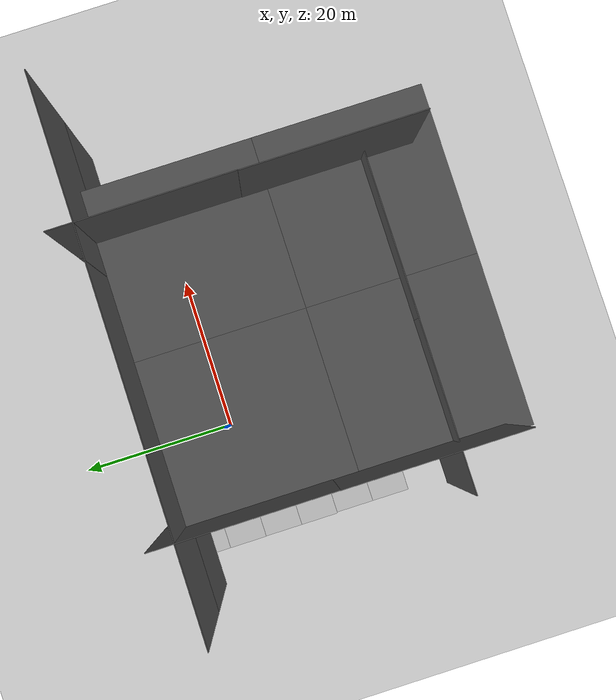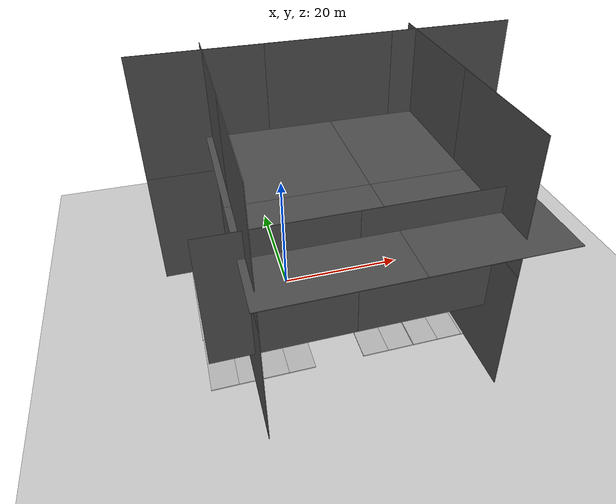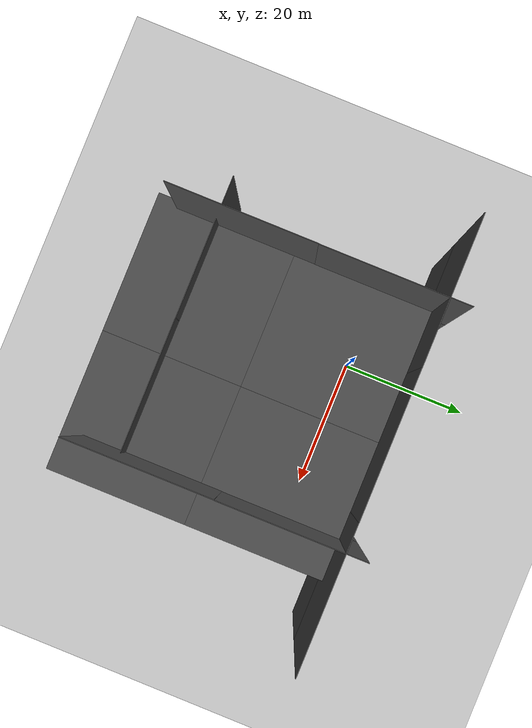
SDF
<sdf version="1.4">
 <world name="default">
  <light name="sun" type="directional">
   <pose>0 0 10 0 -0 0</pose>
   <diffuse>0.8 0.8 0.8 1</diffuse>
   <specular>0.2 0.2 0.2 1</specular>
   <attenuation>
    <range>1000</range>
    <constant>0.9</constant>
    <linear>0.01</linear>
    <quadratic>0.001</quadratic>
   </attenuation>
   <direction>-0.5 0.1 -0.9</direction>
  </light>
  <plugin name="ros_interface_plugin" filename="librotors_gazebo_ros_interface_plugin.so"/>
  <physics type="ode">
   <ode>
    <solver><type>quick</type><iters>1000</iters><sor>1.3</sor></solver>
    <constraints>
     <cfm>0</cfm>
     <erp>0.2</erp>
     <contact_max_correcting_vel>100</contact_max_correcting_vel>
     <contact_surface_layer>0.001</contact_surface_layer>
    </constraints>
   </ode>
   <max_step_size>0.01</max_step_size>
   <real_time_factor>1</real_time_factor>
   <real_time_update_rate>100</real_time_update_rate>
   <gravity>0 0 -9.8</gravity>
  </physics>
  <plugin name="gazebo_octomap" filename="librotors_gazebo_octomap_plugin.so">
   <octomapPubTopic>world/octomap</octomapPubTopic>
   <octomapServiceName>world/get_octomap</octomapServiceName>
  </plugin>
  <scene><ambient>0.4 0.4 0.4 1</ambient><background>0.7 0.7 0.7 1</background><shadows>1</shadows></scene>
  <spherical_coordinates>
   <surface_model>EARTH_WGS84</surface_model>
   <latitude_deg>47.3667</latitude_deg>
   <longitude_deg>8.5500</longitude_deg>
   <elevation>500.0</elevation>
   <heading_deg>0</heading_deg>
  </spherical_coordinates>
  <model name="ground_plane">
   <static>1</static>
   <link name="link">
    <collision name="collision">
     <geometry><plane><normal>0 0 1</normal><size>100 100</size></plane></geometry>
     <surface><friction><ode><mu>100</mu><mu2>50</mu2></ode></friction></surface>
    </collision>
    <visual name="visual">
     <cast_shadows>0</cast_shadows>
     <geometry><plane><normal>0 0 1</normal><size>100 100</size></plane></geometry>
     <material>
      <script><uri>file://media/materials/scripts/gazebo.material</uri><name>Gazebo/Grey</name></script>
     </material>
    </visual>
    <velocity_decay><linear>0</linear><angular>0</angular></velocity_decay>
   </link>
   <pose>17 -17 0 0 -0 0</pose>
  </model>
  <model name="asphalt_plane">
   <static>1</static>
   <link name="link">
    <collision name="collision"><geometry><box><size>20 20 0.1</size></box></geometry></collision>
    <visual name="visual">
     <cast_shadows>0</cast_shadows>
     <geometry><box><size>20 20 0.1</size></box></geometry>
     <material>
      <script>
       <uri>model://asphalt_plane/materials/scripts</uri>
       <uri>model://asphalt_plane/materials/textures</uri>
       <name>vrc/asphalt</name>
      </script>
     </material>
    </visual>
    <velocity_decay><linear>0</linear><angular>0</angular></velocity_decay>
   </link>
   <pose>-9 0 10 0 -1.57 -3.14</pose>
  </model>
  <model name="asphalt_plane_0">
   <static>1</static>
   <link name="link">
    <collision name="collision"><geometry><box><size>20 20 0.1</size></box></geometry></collision>
    <visual name="visual">
     <cast_shadows>0</cast_shadows>
     <geometry><box><size>20 20 0.1</size></box></geometry>
     <material>
      <script>
       <uri>model://asphalt_plane/materials/scripts</uri>
       <uri>model://asphalt_plane/materials/textures</uri>
       <name>vrc/asphalt</name>
      </script>
     </material>
    </visual>
    <velocity_decay><linear>0</linear><angular>0</angular></velocity_decay>
   </link>
   <pose>-9 -20 10 0 -1.57 -3.14</pose>
  </model>
  <model name="asphalt_plane_1">
   <static>1</static>
   <link name="link">
    <collision name="collision"><geometry><box><size>20 20 0.1</size></box></geometry></collision>
    <visual name="visual">
     <cast_shadows>0</cast_shadows>
     <geometry><box><size>20 20 0.1</size></box></geometry>
     <material>
      <script>
       <uri>model://asphalt_plane/materials/scripts</uri>
       <uri>model://asphalt_plane/materials/textures</uri>
       <name>vrc/asphalt</name>
      </script>
     </material>
    </visual>
    <velocity_decay><linear>0</linear><angular>0</angular></velocity_decay>
   </link>
   <pose>-10 7 10 -1.57 -1.57 0</pose>
  </model>
  <model name="asphalt_plane_2">
   <static>1</static>
   <link name="link">
    <collision name="collision"><geometry><box><size>20 20 0.1</size></box></geometry></collision>
    <visual name="visual">
     <cast_shadows>0</cast_shadows>
     <geometry><box><size>20 20 0.1</size></box></geometry>
     <material>
      <script>
       <uri>model://asphalt_plane/materials/scripts</uri>
       <uri>model://asphalt_plane/materials/textures</uri>
       <name>vrc/asphalt</name>
      </script>
     </material>
    </visual>
    <velocity_decay><linear>0</linear><angular>0</angular></velocity_decay>
   </link>
   <pose>10 7 10 -1.57 -1.57 0</pose>
  </model>
  <model name="asphalt_plane_3">
   <static>1</static>
   <link name="link">
    <collision name="collision"><geometry><box><size>20 20 0.1</size></box></geometry></collision>
    <visual name="visual">
     <cast_shadows>0</cast_shadows>
     <geometry><box><size>20 20 0.1</size></box></geometry>
     <material>
      <script>
       <uri>model://asphalt_plane/materials/scripts</uri>
       <uri>model://asphalt_plane/materials/textures</uri>
       <name>vrc/asphalt</name>
      </script>
     </material>
    </visual>
    <velocity_decay><linear>0</linear><angular>0</angular></velocity_decay>
   </link>
   <pose>30 7 10 -1.57 -1.57 0</pose>
  </model>
  <model name="asphalt_plane_4">
   <static>1</static>
   <link name="link">
    <collision name="collision"><geometry><box><size>20 20 0.1</size></box></geometry></collision>
    <visual name="visual">
     <cast_shadows>0</cast_shadows>
     <geometry><box><size>20 20 0.1</size></box></geometry>
     <material>
      <script>
       <uri>model://asphalt_plane/materials/scripts</uri>
       <uri>model://asphalt_plane/materials/textures</uri>
       <name>vrc/asphalt</name>
      </script>
     </material>
    </visual>
    <velocity_decay><linear>0</linear><angular>0</angular></velocity_decay>
   </link>
   <pose>24 0 10  0 -1.57 -3.14</pose>
  </model>
  <model name="asphalt_plane_5">
   <static>1</static>
   <link name="link">
    <collision name="collision"><geometry><box><size>20 20 0.1</size></box></geometry></collision>
    <visual name="visual">
     <cast_shadows>0</cast_shadows>
     <geometry><box><size>20 20 0.1</size></box></geometry>
     <material>
      <script>
       <uri>model://asphalt_plane/materials/scripts</uri>
       <uri>model://asphalt_plane/materials/textures</uri>
       <name>vrc/asphalt</name>
      </script>
     </material>
    </visual>
    <velocity_decay><linear>0</linear><angular>0</angular></velocity_decay>
   </link>
   <pose>24 -20 10  0 -1.57 -3.14</pose>
  </model>
  <model name="asphalt_plane_6">
   <static>1</static>
   <link name="link">
    <collision name="collision"><geometry><box><size>20 20 0.1</size></box></geometry></collision>
    <visual name="visual">
     <cast_shadows>0</cast_shadows>
     <geometry><box><size>20 20 0.1</size></box></geometry>
     <material>
      <script>
       <uri>model://asphalt_plane/materials/scripts</uri>
       <uri>model://asphalt_plane/materials/textures</uri>
       <name>vrc/asphalt</name>
      </script>
     </material>
    </visual>
    <velocity_decay><linear>0</linear><angular>0</angular></velocity_decay>
   </link>
   <pose>-9 0 30 0 -1.57 -3.14</pose>
  </model>
  <model name="asphalt_plane_7">
   <static>1</static>
   <link name="link">
    <collision name="collision"><geometry><box><size>20 20 0.1</size></box></geometry></collision>
    <visual name="visual">
     <cast_shadows>0</cast_shadows>
     <geometry><box><size>20 20 0.1</size></box></geometry>
     <material>
      <script>
       <uri>model://asphalt_plane/materials/scripts</uri>
       <uri>model://asphalt_plane/materials/textures</uri>
       <name>vrc/asphalt</name>
      </script>
     </material>
    </visual>
    <velocity_decay><linear>0</linear><angular>0</angular></velocity_decay>
   </link>
   <pose>-9 -20 30 0 -1.57 -3.14</pose>
  </model>
  <model name="asphalt_plane_8">
   <static>1</static>
   <link name="link">
    <collision name="collision"><geometry><box><size>20 20 0.1</size></box></geometry></collision>
    <visual name="visual">
     <cast_shadows>0</cast_shadows>
     <geometry><box><size>20 20 0.1</size></box></geometry>
     <material>
      <script>
       <uri>model://asphalt_plane/materials/scripts</uri>
       <uri>model://asphalt_plane/materials/textures</uri>
       <name>vrc/asphalt</name>
      </script>
     </material>
    </visual>
    <velocity_decay><linear>0</linear><angular>0</angular></velocity_decay>
   </link>
   <pose>-10 7 30 -1.57 -1.57 0</pose>
  </model>
  <model name="asphalt_plane_9">
   <static>1</static>
   <link name="link">
    <collision name="collision"><geometry><box><size>20 20 0.1</size></box></geometry></collision>
    <visual name="visual">
     <cast_shadows>0</cast_shadows>
     <geometry><box><size>20 20 0.1</size></box></geometry>
     <material>
      <script>
       <uri>model://asphalt_plane/materials/scripts</uri>
       <uri>model://asphalt_plane/materials/textures</uri>
       <name>vrc/asphalt</name>
      </script>
     </material>
    </visual>
    <velocity_decay><linear>0</linear><angular>0</angular></velocity_decay>
   </link>
   <pose>10 7 30 -1.57 -1.57 0</pose>
  </model>
  <model name="asphalt_plane_10">
   <static>1</static>
   <link name="link">
    <collision name="collision"><geometry><box><size>20 20 0.1</size></box></geometry></collision>
    <visual name="visual">
     <cast_shadows>0</cast_shadows>
     <geometry><box><size>20 20 0.1</size></box></geometry>
     <material>
      <script>
       <uri>model://asphalt_plane/materials/scripts</uri>
       <uri>model://asphalt_plane/materials/textures</uri>
       <name>vrc/asphalt</name>
      </script>
     </material>
    </visual>
    <velocity_decay><linear>0</linear><angular>0</angular></velocity_decay>
   </link>
   <pose>30 7 30 -1.57 -1.57 0</pose>
  </model>
  <model name="asphalt_plane_11">
   <static>1</static>
   <link name="link">
    <collision name="collision"><geometry><box><size>20 20 0.1</size></box></geometry></collision>
    <visual name="visual">
     <cast_shadows>0</cast_shadows>
     <geometry><box><size>20 20 0.1</size></box></geometry>
     <material>
      <script>
       <uri>model://asphalt_plane/materials/scripts</uri>
       <uri>model://asphalt_plane/materials/textures</uri>
       <name>vrc/asphalt</name>
      </script>
     </material>
    </visual>
    <velocity_decay><linear>0</linear><angular>0</angular></velocity_decay>
   </link>
   <pose>24 0 30  0 -1.57 -3.14</pose>
  </model>
  <model name="asphalt_plane_12">
   <static>1</static>
   <link name="link">
    <collision name="collision"><geometry><box><size>20 20 0.1</size></box></geometry></collision>
    <visual name="visual">
     <cast_shadows>0</cast_shadows>
     <geometry><box><size>20 20 0.1</size></box></geometry>
     <material>
      <script>
       <uri>model://asphalt_plane/materials/scripts</uri>
       <uri>model://asphalt_plane/materials/textures</uri>
       <name>vrc/asphalt</name>
      </script>
     </material>
    </visual>
    <velocity_decay><linear>0</linear><angular>0</angular></velocity_decay>
   </link>
   <pose>24 -20 30  0 -1.57 -3.14</pose>
  </model>
  <model name="asphalt_plane_13">
   <static>1</static>
   <link name="link">
    <collision name="collision"><geometry><box><size>20 20 0.1</size></box></geometry></collision>
    <visual name="visual">
     <cast_shadows>0</cast_shadows>
     <geometry><box><size>20 20 0.1</size></box></geometry>
     <material>
      <script>
       <uri>model://asphalt_plane/materials/scripts</uri>
       <uri>model://asphalt_plane/materials/textures</uri>
       <name>vrc/asphalt</name>
      </script>
     </material>
    </visual>
    <velocity_decay><linear>0</linear><angular>0</angular></velocity_decay>
   </link>
   <pose>15 -24 20  -1.57 -1.57 0</pose>
  </model>
  <model name="asphalt_plane_14">
   <static>1</static>
   <link name="link">
    <collision name="collision"><geometry><box><size>20 20 0.1</size></box></geometry></collision>
    <visual name="visual">
     <cast_shadows>0</cast_shadows>
     <geometry><box><size>20 20 0.1</size></box></geometry>
     <material>
      <script>
       <uri>model://asphalt_plane/materials/scripts</uri>
       <uri>model://asphalt_plane/materials/textures</uri>
       <name>vrc/asphalt</name>
      </script>
     </material>
    </visual>
    <velocity_decay><linear>0</linear><angular>0</angular></velocity_decay>
   </link>
   <pose>-5 -24 20 -1.57 -1.57 0</pose>
  </model>
  <model name="asphalt_plane_15">
   <static>1</static>
   <link name="link">
    <collision name="collision"><geometry><box><size>20 20 0.1</size></box></geometry></collision>
    <visual name="visual">
     <cast_shadows>0</cast_shadows>
     <geometry><box><size>20 20 0.1</size></box></geometry>
     <material>
      <script>
       <uri>model://asphalt_plane/materials/scripts</uri>
       <uri>model://asphalt_plane/materials/textures</uri>
       <name>vrc/asphalt</name>
      </script>
     </material>
    </visual>
    <velocity_decay><linear>0</linear><angular>0</angular></velocity_decay>
   </link>
   <pose>0 -3 26 0 0 0</pose>
  </model>
  <model name="asphalt_plane_16">
   <static>1</static>
   <link name="link">
    <collision name="collision"><geometry><box><size>20 20 0.1</size></box></geometry></collision>
    <visual name="visual">
     <cast_shadows>0</cast_shadows>
     <geometry><box><size>20 20 0.1</size></box></geometry>
     <material>
      <script>
       <uri>model://asphalt_plane/materials/scripts</uri>
       <uri>model://asphalt_plane/materials/textures</uri>
       <name>vrc/asphalt</name>
      </script>
     </material>
    </visual>
    <velocity_decay><linear>0</linear><angular>0</angular></velocity_decay>
   </link>
   <pose>20 -3 26 0 0 0</pose>
  </model>
  <model name="asphalt_plane_17">
   <static>1</static>
   <link name="link">
    <collision name="collision"><geometry><box><size>20 20 0.1</size></box></geometry></collision>
    <visual name="visual">
     <cast_shadows>0</cast_shadows>
     <geometry><box><size>20 20 0.1</size></box></geometry>
     <material>
      <script>
       <uri>model://asphalt_plane/materials/scripts</uri>
       <uri>model://asphalt_plane/materials/textures</uri>
       <name>vrc/asphalt</name>
      </script>
     </material>
    </visual>
    <velocity_decay><linear>0</linear><angular>0</angular></velocity_decay>
   </link>
   <pose>0 -23 26 0 0 0</pose>
  </model>
  <model name="asphalt_plane_18">
   <static>1</static>
   <link name="link">
    <collision name="collision"><geometry><box><size>20 20 0.1</size></box></geometry></collision>
    <visual name="visual">
     <cast_shadows>0</cast_shadows>
     <geometry><box><size>20 20 0.1</size></box></geometry>
     <material>
      <script>
       <uri>model://asphalt_plane/materials/scripts</uri>
       <uri>model://asphalt_plane/materials/textures</uri>
       <name>vrc/asphalt</name>
      </script>
     </material>
    </visual>
    <velocity_decay><linear>0</linear><angular>0</angular></velocity_decay>
   </link>
   <pose>20 -23 26 0 0 0</pose>
  </model>
  <model name="mud_box_0">
   <static>1</static>
   <link name="link">
    <collision name="collision"><geometry><box><size>8 10 0.2</size></box></geometry></collision>
    <visual name="visual_1">
     <pose>-2 2.5 0 0 -0 0</pose>
     <cast_shadows>0</cast_shadows>
     <geometry><box><size>4 5 0.2</size></box></geometry>
     <material>
      <script>
       <uri>model://mud_box/materials/scripts</uri>
       <uri>model://mud_box/materials/textures</uri>
       <name>vrc/mud</name>
      </script>
     </material>
    </visual>
    <visual name="visual_2">
     <pose>2 2.5 0 0 -0 0</pose>
     <cast_shadows>0</cast_shadows>
     <geometry><box><size>4 5 0.2</size></box></geometry>
     <material>
      <script>
       <uri>model://mud_box/materials/scripts</uri>
       <uri>model://mud_box/materials/textures</uri>
       <name>vrc/mud</name>
      </script>
     </material>
    </visual>
    <visual name="visual_3">
     <pose>2 -2.5 0 0 -0 0</pose>
     <cast_shadows>0</cast_shadows>
     <geometry><box><size>4 5 0.2</size></box></geometry>
     <material>
      <script>
       <uri>model://mud_box/materials/scripts</uri>
       <uri>model://mud_box/materials/textures</uri>
       <name>vrc/mud</name>
      </script>
     </material>
    </visual>
    <visual name="visual_4">
     <pose>-2 -2.5 0 0 -0 0</pose>
     <cast_shadows>0</cast_shadows>
     <geometry><box><size>4 5 0.2</size></box></geometry>
     <material>
      <script>
       <uri>model://mud_box/materials/scripts</uri>
       <uri>model://mud_box/materials/textures</uri>
       <name>vrc/mud</name>
      </script>
     </material>
    </visual>
    <velocity_decay><linear>0</linear><angular>0</angular></velocity_decay>
   </link>
   <pose>4 5 0 0 -0 0</pose>
  </model>
  <model name="mud_box_1">
   <static>1</static>
   <link name="link">
    <collision name="collision"><geometry><box><size>8 10 0.2</size></box></geometry></collision>
    <visual name="visual_1">
     <pose>-2 2.5 0 0 -0 0</pose>
     <cast_shadows>0</cast_shadows>
     <geometry><box><size>4 5 0.2</size></box></geometry>
     <material>
      <script>
       <uri>model://mud_box/materials/scripts</uri>
       <uri>model://mud_box/materials/textures</uri>
       <name>vrc/mud</name>
      </script>
     </material>
    </visual>
    <visual name="visual_2">
     <pose>2 2.5 0 0 -0 0</pose>
     <cast_shadows>0</cast_shadows>
     <geometry><box><size>4 5 0.2</size></box></geometry>
     <material>
      <script>
       <uri>model://mud_box/materials/scripts</uri>
       <uri>model://mud_box/materials/textures</uri>
       <name>vrc/mud</name>
      </script>
     </material>
    </visual>
    <visual name="visual_3">
     <pose>2 -2.5 0 0 -0 0</pose>
     <cast_shadows>0</cast_shadows>
     <geometry><box><size>4 5 0.2</size></box></geometry>
     <material>
      <script>
       <uri>model://mud_box/materials/scripts</uri>
       <uri>model://mud_box/materials/textures</uri>
       <name>vrc/mud</name>
      </script>
     </material>
    </visual>
    <visual name="visual_4">
     <pose>-2 -2.5 0 0 -0 0</pose>
     <cast_shadows>0</cast_shadows>
     <geometry><box><size>4 5 0.2</size></box></geometry>
     <material>
      <script>
       <uri>model://mud_box/materials/scripts</uri>
       <uri>model://mud_box/materials/textures</uri>
       <name>vrc/mud</name>
      </script>
     </material>
    </visual>
    <velocity_decay><linear>0</linear><angular>0</angular></velocity_decay>
   </link>
   <pose>-4 -5 0 0 -0 0</pose>
  </model>
  <model name="mud_box_2">
   <static>1</static>
   <link name="link">
    <collision name="collision"><geometry><box><size>8 10 0.2</size></box></geometry></collision>
    <visual name="visual_1">
     <pose>-2 2.5 0 0 -0 0</pose>
     <cast_shadows>0</cast_shadows>
     <geometry><box><size>4 5 0.2</size></box></geometry>
     <material>
      <script>
       <uri>model://mud_box/materials/scripts</uri>
       <uri>model://mud_box/materials/textures</uri>
       <name>vrc/mud</name>
      </script>
     </material>
    </visual>
    <visual name="visual_2">
     <pose>2 2.5 0 0 -0 0</pose>
     <cast_shadows>0</cast_shadows>
     <geometry><box><size>4 5 0.2</size></box></geometry>
     <material>
      <script>
       <uri>model://mud_box/materials/scripts</uri>
       <uri>model://mud_box/materials/textures</uri>
       <name>vrc/mud</name>
      </script>
     </material>
    </visual>
    <visual name="visual_3">
     <pose>2 -2.5 0 0 -0 0</pose>
     <cast_shadows>0</cast_shadows>
     <geometry><box><size>4 5 0.2</size></box></geometry>
     <material>
      <script>
       <uri>model://mud_box/materials/scripts</uri>
       <uri>model://mud_box/materials/textures</uri>
       <name>vrc/mud</name>
      </script>
     </material>
    </visual>
    <visual name="visual_4">
     <pose>-2 -2.5 0 0 -0 0</pose>
     <cast_shadows>0</cast_shadows>
     <geometry><box><size>4 5 0.2</size></box></geometry>
     <material>
      <script>
       <uri>model://mud_box/materials/scripts</uri>
       <uri>model://mud_box/materials/textures</uri>
       <name>vrc/mud</name>
      </script>
     </material>
    </visual>
    <velocity_decay><linear>0</linear><angular>0</angular></velocity_decay>
   </link>
   <pose>4 -5 0 0 -0 0</pose>
  </model>
  <model name="mud_box_3">
   <static>1</static>
   <link name="link">
    <collision name="collision"><geometry><box><size>8 10 0.2</size></box></geometry></collision>
    <visual name="visual_1">
     <pose>-2 2.5 0 0 -0 0</pose>
     <cast_shadows>0</cast_shadows>
     <geometry><box><size>4 5 0.2</size></box></geometry>
     <material>
      <script>
       <uri>model://mud_box/materials/scripts</uri>
       <uri>model://mud_box/materials/textures</uri>
       <name>vrc/mud</name>
      </script>
     </material>
    </visual>
    <visual name="visual_2">
     <pose>2 2.5 0 0 -0 0</pose>
     <cast_shadows>0</cast_shadows>
     <geometry><box><size>4 5 0.2</size></box></geometry>
     <material>
      <script>
       <uri>model://mud_box/materials/scripts</uri>
       <uri>model://mud_box/materials/textures</uri>
       <name>vrc/mud</name>
      </script>
     </material>
    </visual>
    <visual name="visual_3">
     <pose>2 -2.5 0 0 -0 0</pose>
     <cast_shadows>0</cast_shadows>
     <geometry><box><size>4 5 0.2</size></box></geometry>
     <material>
      <script>
       <uri>model://mud_box/materials/scripts</uri>
       <uri>model://mud_box/materials/textures</uri>
       <name>vrc/mud</name>
      </script>
     </material>
    </visual>
    <visual name="visual_4">
     <pose>-2 -2.5 0 0 -0 0</pose>
     <cast_shadows>0</cast_shadows>
     <geometry><box><size>4 5 0.2</size></box></geometry>
     <material>
      <script>
       <uri>model://mud_box/materials/scripts</uri>
       <uri>model://mud_box/materials/textures</uri>
       <name>vrc/mud</name>
      </script>
     </material>
    </visual>
    <velocity_decay><linear>0</linear><angular>0</angular></velocity_decay>
   </link>
   <pose>12 5 0 0 -0 0</pose>
  </model>
  <model name="mud_box_4">
   <static>1</static>
   <link name="link">
    <collision name="collision"><geometry><box><size>8 10 0.2</size></box></geometry></collision>
    <visual name="visual_1">
     <pose>-2 2.5 0 0 -0 0</pose>
     <cast_shadows>0</cast_shadows>
     <geometry><box><size>4 5 0.2</size></box></geometry>
     <material>
      <script>
       <uri>model://mud_box/materials/scripts</uri>
       <uri>model://mud_box/materials/textures</uri>
       <name>vrc/mud</name>
      </script>
     </material>
    </visual>
    <visual name="visual_2">
     <pose>2 2.5 0 0 -0 0</pose>
     <cast_shadows>0</cast_shadows>
     <geometry><box><size>4 5 0.2</size></box></geometry>
     <material>
      <script>
       <uri>model://mud_box/materials/scripts</uri>
       <uri>model://mud_box/materials/textures</uri>
       <name>vrc/mud</name>
      </script>
     </material>
    </visual>
    <visual name="visual_3">
     <pose>2 -2.5 0 0 -0 0</pose>
     <cast_shadows>0</cast_shadows>
     <geometry><box><size>4 5 0.2</size></box></geometry>
     <material>
      <script>
       <uri>model://mud_box/materials/scripts</uri>
       <uri>model://mud_box/materials/textures</uri>
       <name>vrc/mud</name>
      </script>
     </material>
    </visual>
    <visual name="visual_4">
     <pose>-2 -2.5 0 0 -0 0</pose>
     <cast_shadows>0</cast_shadows>
     <geometry><box><size>4 5 0.2</size></box></geometry>
     <material>
      <script>
       <uri>model://mud_box/materials/scripts</uri>
       <uri>model://mud_box/materials/textures</uri>
       <name>vrc/mud</name>
      </script>
     </material>
    </visual>
    <velocity_decay><linear>0</linear><angular>0</angular></velocity_decay>
   </link>
   <pose>-4 5 0 0 -0 0</pose>
  </model>
  <model name="mud_box_5">
   <static>1</static>
   <link name="link">
    <collision name="collision"><geometry><box><size>8 10 0.2</size></box></geometry></collision>
    <visual name="visual_1">
     <pose>-2 2.5 0 0 -0 0</pose>
     <cast_shadows>0</cast_shadows>
     <geometry><box><size>4 5 0.2</size></box></geometry>
     <material>
      <script>
       <uri>model://mud_box/materials/scripts</uri>
       <uri>model://mud_box/materials/textures</uri>
       <name>vrc/mud</name>
      </script>
     </material>
    </visual>
    <visual name="visual_2">
     <pose>2 2.5 0 0 -0 0</pose>
     <cast_shadows>0</cast_shadows>
     <geometry><box><size>4 5 0.2</size></box></geometry>
     <material>
      <script>
       <uri>model://mud_box/materials/scripts</uri>
       <uri>model://mud_box/materials/textures</uri>
       <name>vrc/mud</name>
      </script>
     </material>
    </visual>
    <visual name="visual_3">
     <pose>2 -2.5 0 0 -0 0</pose>
     <cast_shadows>0</cast_shadows>
     <geometry><box><size>4 5 0.2</size></box></geometry>
     <material>
      <script>
       <uri>model://mud_box/materials/scripts</uri>
       <uri>model://mud_box/materials/textures</uri>
       <name>vrc/mud</name>
      </script>
     </material>
    </visual>
    <visual name="visual_4">
     <pose>-2 -2.5 0 0 -0 0</pose>
     <cast_shadows>0</cast_shadows>
     <geometry><box><size>4 5 0.2</size></box></geometry>
     <material>
      <script>
       <uri>model://mud_box/materials/scripts</uri>
       <uri>model://mud_box/materials/textures</uri>
       <name>vrc/mud</name>
      </script>
     </material>
    </visual>
    <velocity_decay><linear>0</linear><angular>0</angular></velocity_decay>
   </link>
   <pose>-11.5813 5 0 0 -0 0</pose>
  </model>
  <model name="mud_box_6">
   <static>1</static>
   <link name="link">
    <collision name="collision"><geometry><box><size>8 10 0.2</size></box></geometry></collision>
    <visual name="visual_1">
     <pose>-2 2.5 0 0 -0 0</pose>
     <cast_shadows>0</cast_shadows>
     <geometry><box><size>4 5 0.2</size></box></geometry>
     <material>
      <script>
       <uri>model://mud_box/materials/scripts</uri>
       <uri>model://mud_box/materials/textures</uri>
       <name>vrc/mud</name>
      </script>
     </material>
    </visual>
    <visual name="visual_2">
     <pose>2 2.5 0 0 -0 0</pose>
     <cast_shadows>0</cast_shadows>
     <geometry><box><size>4 5 0.2</size></box></geometry>
     <material>
      <script>
       <uri>model://mud_box/materials/scripts</uri>
       <uri>model://mud_box/materials/textures</uri>
       <name>vrc/mud</name>
      </script>
     </material>
    </visual>
    <visual name="visual_3">
     <pose>2 -2.5 0 0 -0 0</pose>
     <cast_shadows>0</cast_shadows>
     <geometry><box><size>4 5 0.2</size></box></geometry>
     <material>
      <script>
       <uri>model://mud_box/materials/scripts</uri>
       <uri>model://mud_box/materials/textures</uri>
       <name>vrc/mud</name>
      </script>
     </material>
    </visual>
    <visual name="visual_4">
     <pose>-2 -2.5 0 0 -0 0</pose>
     <cast_shadows>0</cast_shadows>
     <geometry><box><size>4 5 0.2</size></box></geometry>
     <material>
      <script>
       <uri>model://mud_box/materials/scripts</uri>
       <uri>model://mud_box/materials/textures</uri>
       <name>vrc/mud</name>
      </script>
     </material>
    </visual>
    <velocity_decay><linear>0</linear><angular>0</angular></velocity_decay>
   </link>
   <pose>-11.5408 -5 0 0 -0 0</pose>
  </model>
  <model name="mud_box_7">
   <static>1</static>
   <link name="link">
    <collision name="collision"><geometry><box><size>8 10 0.2</size></box></geometry></collision>
    <visual name="visual_1">
     <pose>-2 2.5 0 0 -0 0</pose>
     <cast_shadows>0</cast_shadows>
     <geometry><box><size>4 5 0.2</size></box></geometry>
     <material>
      <script>
       <uri>model://mud_box/materials/scripts</uri>
       <uri>model://mud_box/materials/textures</uri>
       <name>vrc/mud</name>
      </script>
     </material>
    </visual>
    <visual name="visual_2">
     <pose>2 2.5 0 0 -0 0</pose>
     <cast_shadows>0</cast_shadows>
     <geometry><box><size>4 5 0.2</size></box></geometry>
     <material>
      <script>
       <uri>model://mud_box/materials/scripts</uri>
       <uri>model://mud_box/materials/textures</uri>
       <name>vrc/mud</name>
      </script>
     </material>
    </visual>
    <visual name="visual_3">
     <pose>2 -2.5 0 0 -0 0</pose>
     <cast_shadows>0</cast_shadows>
     <geometry><box><size>4 5 0.2</size></box></geometry>
     <material>
      <script>
       <uri>model://mud_box/materials/scripts</uri>
       <uri>model://mud_box/materials/textures</uri>
       <name>vrc/mud</name>
      </script>
     </material>
    </visual>
    <visual name="visual_4">
     <pose>-2 -2.5 0 0 -0 0</pose>
     <cast_shadows>0</cast_shadows>
     <geometry><box><size>4 5 0.2</size></box></geometry>
     <material>
      <script>
       <uri>model://mud_box/materials/scripts</uri>
       <uri>model://mud_box/materials/textures</uri>
       <name>vrc/mud</name>
      </script>
     </material>
    </visual>
    <velocity_decay><linear>0</linear><angular>0</angular></velocity_decay>
   </link>
   <pose>-11.4023 -15 0 0 -0 0</pose>
  </model>
  <model name="mud_box_8">
   <static>1</static>
   <link name="link">
    <collision name="collision"><geometry><box><size>8 10 0.2</size></box></geometry></collision>
    <visual name="visual_1">
     <pose>-2 2.5 0 0 -0 0</pose>
     <cast_shadows>0</cast_shadows>
     <geometry><box><size>4 5 0.2</size></box></geometry>
     <material>
      <script>
       <uri>model://mud_box/materials/scripts</uri>
       <uri>model://mud_box/materials/textures</uri>
       <name>vrc/mud</name>
      </script>
     </material>
    </visual>
    <visual name="visual_2">
     <pose>2 2.5 0 0 -0 0</pose>
     <cast_shadows>0</cast_shadows>
     <geometry><box><size>4 5 0.2</size></box></geometry>
     <material>
      <script>
       <uri>model://mud_box/materials/scripts</uri>
       <uri>model://mud_box/materials/textures</uri>
       <name>vrc/mud</name>
      </script>
     </material>
    </visual>
    <visual name="visual_3">
     <pose>2 -2.5 0 0 -0 0</pose>
     <cast_shadows>0</cast_shadows>
     <geometry><box><size>4 5 0.2</size></box></geometry>
     <material>
      <script>
       <uri>model://mud_box/materials/scripts</uri>
       <uri>model://mud_box/materials/textures</uri>
       <name>vrc/mud</name>
      </script>
     </material>
    </visual>
    <visual name="visual_4">
     <pose>-2 -2.5 0 0 -0 0</pose>
     <cast_shadows>0</cast_shadows>
     <geometry><box><size>4 5 0.2</size></box></geometry>
     <material>
      <script>
       <uri>model://mud_box/materials/scripts</uri>
       <uri>model://mud_box/materials/textures</uri>
       <name>vrc/mud</name>
      </script>
     </material>
    </visual>
    <velocity_decay><linear>0</linear><angular>0</angular></velocity_decay>
   </link>
   <pose>-4 -15 0 0 -0 0</pose>
  </model>
  <model name="mud_box_9">
   <static>1</static>
   <link name="link">
    <collision name="collision"><geometry><box><size>8 10 0.2</size></box></geometry></collision>
    <visual name="visual_1">
     <pose>-2 2.5 0 0 -0 0</pose>
     <cast_shadows>0</cast_shadows>
     <geometry><box><size>4 5 0.2</size></box></geometry>
     <material>
      <script>
       <uri>model://mud_box/materials/scripts</uri>
       <uri>model://mud_box/materials/textures</uri>
       <name>vrc/mud</name>
      </script>
     </material>
    </visual>
    <visual name="visual_2">
     <pose>2 2.5 0 0 -0 0</pose>
     <cast_shadows>0</cast_shadows>
     <geometry><box><size>4 5 0.2</size></box></geometry>
     <material>
      <script>
       <uri>model://mud_box/materials/scripts</uri>
       <uri>model://mud_box/materials/textures</uri>
       <name>vrc/mud</name>
      </script>
     </material>
    </visual>
    <visual name="visual_3">
     <pose>2 -2.5 0 0 -0 0</pose>
     <cast_shadows>0</cast_shadows>
     <geometry><box><size>4 5 0.2</size></box></geometry>
     <material>
      <script>
       <uri>model://mud_box/materials/scripts</uri>
       <uri>model://mud_box/materials/textures</uri>
       <name>vrc/mud</name>
      </script>
     </material>
    </visual>
    <visual name="visual_4">
     <pose>-2 -2.5 0 0 -0 0</pose>
     <cast_shadows>0</cast_shadows>
     <geometry><box><size>4 5 0.2</size></box></geometry>
     <material>
      <script>
       <uri>model://mud_box/materials/scripts</uri>
       <uri>model://mud_box/materials/textures</uri>
       <name>vrc/mud</name>
      </script>
     </material>
    </visual>
    <velocity_decay><linear>0</linear><angular>0</angular></velocity_decay>
   </link>
   <pose>12 -5 0 0 -0 0</pose>
  </model>
  <model name="mud_box_10">
   <static>1</static>
   <link name="link">
    <collision name="collision"><geometry><box><size>8 10 0.2</size></box></geometry></collision>
    <visual name="visual_1">
     <pose>-2 2.5 0 0 -0 0</pose>
     <cast_shadows>0</cast_shadows>
     <geometry><box><size>4 5 0.2</size></box></geometry>
     <material>
      <script>
       <uri>model://mud_box/materials/scripts</uri>
       <uri>model://mud_box/materials/textures</uri>
       <name>vrc/mud</name>
      </script>
     </material>
    </visual>
    <visual name="visual_2">
     <pose>2 2.5 0 0 -0 0</pose>
     <cast_shadows>0</cast_shadows>
     <geometry><box><size>4 5 0.2</size></box></geometry>
     <material>
      <script>
       <uri>model://mud_box/materials/scripts</uri>
       <uri>model://mud_box/materials/textures</uri>
       <name>vrc/mud</name>
      </script>
     </material>
    </visual>
    <visual name="visual_3">
     <pose>2 -2.5 0 0 -0 0</pose>
     <cast_shadows>0</cast_shadows>
     <geometry><box><size>4 5 0.2</size></box></geometry>
     <material>
      <script>
       <uri>model://mud_box/materials/scripts</uri>
       <uri>model://mud_box/materials/textures</uri>
       <name>vrc/mud</name>
      </script>
     </material>
    </visual>
    <visual name="visual_4">
     <pose>-2 -2.5 0 0 -0 0</pose>
     <cast_shadows>0</cast_shadows>
     <geometry><box><size>4 5 0.2</size></box></geometry>
     <material>
      <script>
       <uri>model://mud_box/materials/scripts</uri>
       <uri>model://mud_box/materials/textures</uri>
       <name>vrc/mud</name>
      </script>
     </material>
    </visual>
    <velocity_decay><linear>0</linear><angular>0</angular></velocity_decay>
   </link>
   <pose>20 5 0 0 -0 0</pose>
  </model>
  <model name="mud_box_11">
   <static>1</static>
   <link name="link">
    <collision name="collision"><geometry><box><size>8 10 0.2</size></box></geometry></collision>
    <visual name="visual_1">
     <pose>-2 2.5 0 0 -0 0</pose>
     <cast_shadows>0</cast_shadows>
     <geometry><box><size>4 5 0.2</size></box></geometry>
     <material>
      <script>
       <uri>model://mud_box/materials/scripts</uri>
       <uri>model://mud_box/materials/textures</uri>
       <name>vrc/mud</name>
      </script>
     </material>
    </visual>
    <visual name="visual_2">
     <pose>2 2.5 0 0 -0 0</pose>
     <cast_shadows>0</cast_shadows>
     <geometry><box><size>4 5 0.2</size></box></geometry>
     <material>
      <script>
       <uri>model://mud_box/materials/scripts</uri>
       <uri>model://mud_box/materials/textures</uri>
       <name>vrc/mud</name>
      </script>
     </material>
    </visual>
    <visual name="visual_3">
     <pose>2 -2.5 0 0 -0 0</pose>
     <cast_shadows>0</cast_shadows>
     <geometry><box><size>4 5 0.2</size></box></geometry>
     <material>
      <script>
       <uri>model://mud_box/materials/scripts</uri>
       <uri>model://mud_box/materials/textures</uri>
       <name>vrc/mud</name>
      </script>
     </material>
    </visual>
    <visual name="visual_4">
     <pose>-2 -2.5 0 0 -0 0</pose>
     <cast_shadows>0</cast_shadows>
     <geometry><box><size>4 5 0.2</size></box></geometry>
     <material>
      <script>
       <uri>model://mud_box/materials/scripts</uri>
       <uri>model://mud_box/materials/textures</uri>
       <name>vrc/mud</name>
      </script>
     </material>
    </visual>
    <velocity_decay><linear>0</linear><angular>0</angular></velocity_decay>
   </link>
   <pose>20 -5 0 0 -0 0</pose>
  </model>
  <model name="mud_box_12">
   <static>1</static>
   <link name="link">
    <collision name="collision"><geometry><box><size>8 10 0.2</size></box></geometry></collision>
    <visual name="visual_1">
     <pose>-2 2.5 0 0 -0 0</pose>
     <cast_shadows>0</cast_shadows>
     <geometry><box><size>4 5 0.2</size></box></geometry>
     <material>
      <script>
       <uri>model://mud_box/materials/scripts</uri>
       <uri>model://mud_box/materials/textures</uri>
       <name>vrc/mud</name>
      </script>
     </material>
    </visual>
    <visual name="visual_2">
     <pose>2 2.5 0 0 -0 0</pose>
     <cast_shadows>0</cast_shadows>
     <geometry><box><size>4 5 0.2</size></box></geometry>
     <material>
      <script>
       <uri>model://mud_box/materials/scripts</uri>
       <uri>model://mud_box/materials/textures</uri>
       <name>vrc/mud</name>
      </script>
     </material>
    </visual>
    <visual name="visual_3">
     <pose>2 -2.5 0 0 -0 0</pose>
     <cast_shadows>0</cast_shadows>
     <geometry><box><size>4 5 0.2</size></box></geometry>
     <material>
      <script>
       <uri>model://mud_box/materials/scripts</uri>
       <uri>model://mud_box/materials/textures</uri>
       <name>vrc/mud</name>
      </script>
     </material>
    </visual>
    <visual name="visual_4">
     <pose>-2 -2.5 0 0 -0 0</pose>
     <cast_shadows>0</cast_shadows>
     <geometry><box><size>4 5 0.2</size></box></geometry>
     <material>
      <script>
       <uri>model://mud_box/materials/scripts</uri>
       <uri>model://mud_box/materials/textures</uri>
       <name>vrc/mud</name>
      </script>
     </material>
    </visual>
    <velocity_decay><linear>0</linear><angular>0</angular></velocity_decay>
   </link>
   <pose>28 5 0 0 -0 0</pose>
  </model>
  <model name="mud_box_13">
   <static>1</static>
   <link name="link">
    <collision name="collision"><geometry><box><size>8 10 0.2</size></box></geometry></collision>
    <visual name="visual_1">
     <pose>-2 2.5 0 0 -0 0</pose>
     <cast_shadows>0</cast_shadows>
     <geometry><box><size>4 5 0.2</size></box></geometry>
     <material>
      <script>
       <uri>model://mud_box/materials/scripts</uri>
       <uri>model://mud_box/materials/textures</uri>
       <name>vrc/mud</name>
      </script>
     </material>
    </visual>
    <visual name="visual_2">
     <pose>2 2.5 0 0 -0 0</pose>
     <cast_shadows>0</cast_shadows>
     <geometry><box><size>4 5 0.2</size></box></geometry>
     <material>
      <script>
       <uri>model://mud_box/materials/scripts</uri>
       <uri>model://mud_box/materials/textures</uri>
       <name>vrc/mud</name>
      </script>
     </material>
    </visual>
    <visual name="visual_3">
     <pose>2 -2.5 0 0 -0 0</pose>
     <cast_shadows>0</cast_shadows>
     <geometry><box><size>4 5 0.2</size></box></geometry>
     <material>
      <script>
       <uri>model://mud_box/materials/scripts</uri>
       <uri>model://mud_box/materials/textures</uri>
       <name>vrc/mud</name>
      </script>
     </material>
    </visual>
    <visual name="visual_4">
     <pose>-2 -2.5 0 0 -0 0</pose>
     <cast_shadows>0</cast_shadows>
     <geometry><box><size>4 5 0.2</size></box></geometry>
     <material>
      <script>
       <uri>model://mud_box/materials/scripts</uri>
       <uri>model://mud_box/materials/textures</uri>
       <name>vrc/mud</name>
      </script>
     </material>
    </visual>
    <velocity_decay><linear>0</linear><angular>0</angular></velocity_decay>
   </link>
   <pose>28 -5 0 0 -0 0</pose>
  </model>
  <model name="mud_box_14">
   <static>1</static>
   <link name="link">
    <collision name="collision"><geometry><box><size>8 10 0.2</size></box></geometry></collision>
    <visual name="visual_1">
     <pose>-2 2.5 0 0 -0 0</pose>
     <cast_shadows>0</cast_shadows>
     <geometry><box><size>4 5 0.2</size></box></geometry>
     <material>
      <script>
       <uri>model://mud_box/materials/scripts</uri>
       <uri>model://mud_box/materials/textures</uri>
       <name>vrc/mud</name>
      </script>
     </material>
    </visual>
    <visual name="visual_2">
     <pose>2 2.5 0 0 -0 0</pose>
     <cast_shadows>0</cast_shadows>
     <geometry><box><size>4 5 0.2</size></box></geometry>
     <material>
      <script>
       <uri>model://mud_box/materials/scripts</uri>
       <uri>model://mud_box/materials/textures</uri>
       <name>vrc/mud</name>
      </script>
     </material>
    </visual>
    <visual name="visual_3">
     <pose>2 -2.5 0 0 -0 0</pose>
     <cast_shadows>0</cast_shadows>
     <geometry><box><size>4 5 0.2</size></box></geometry>
     <material>
      <script>
       <uri>model://mud_box/materials/scripts</uri>
       <uri>model://mud_box/materials/textures</uri>
       <name>vrc/mud</name>
      </script>
     </material>
    </visual>
    <visual name="visual_4">
     <pose>-2 -2.5 0 0 -0 0</pose>
     <cast_shadows>0</cast_shadows>
     <geometry><box><size>4 5 0.2</size></box></geometry>
     <material>
      <script>
       <uri>model://mud_box/materials/scripts</uri>
       <uri>model://mud_box/materials/textures</uri>
       <name>vrc/mud</name>
      </script>
     </material>
    </visual>
    <velocity_decay><linear>0</linear><angular>0</angular></velocity_decay>
   </link>
   <pose>27.5166 -15 0 0 -0 0</pose>
  </model>
  <model name="mud_box_15">
   <static>1</static>
   <link name="link">
    <collision name="collision"><geometry><box><size>8 10 0.2</size></box></geometry></collision>
    <visual name="visual_1">
     <pose>-2 2.5 0 0 -0 0</pose>
     <cast_shadows>0</cast_shadows>
     <geometry><box><size>4 5 0.2</size></box></geometry>
     <material>
      <script>
       <uri>model://mud_box/materials/scripts</uri>
       <uri>model://mud_box/materials/textures</uri>
       <name>vrc/mud</name>
      </script>
     </material>
    </visual>
    <visual name="visual_2">
     <pose>2 2.5 0 0 -0 0</pose>
     <cast_shadows>0</cast_shadows>
     <geometry><box><size>4 5 0.2</size></box></geometry>
     <material>
      <script>
       <uri>model://mud_box/materials/scripts</uri>
       <uri>model://mud_box/materials/textures</uri>
       <name>vrc/mud</name>
      </script>
     </material>
    </visual>
    <visual name="visual_3">
     <pose>2 -2.5 0 0 -0 0</pose>
     <cast_shadows>0</cast_shadows>
     <geometry><box><size>4 5 0.2</size></box></geometry>
     <material>
      <script>
       <uri>model://mud_box/materials/scripts</uri>
       <uri>model://mud_box/materials/textures</uri>
       <name>vrc/mud</name>
      </script>
     </material>
    </visual>
    <visual name="visual_4">
     <pose>-2 -2.5 0 0 -0 0</pose>
     <cast_shadows>0</cast_shadows>
     <geometry><box><size>4 5 0.2</size></box></geometry>
     <material>
      <script>
       <uri>model://mud_box/materials/scripts</uri>
       <uri>model://mud_box/materials/textures</uri>
       <name>vrc/mud</name>
      </script>
     </material>
    </visual>
    <velocity_decay><linear>0</linear><angular>0</angular></velocity_decay>
   </link>
   <pose>19.5897 -15 0 0 -0 0</pose>
  </model>
  <model name="mud_box_16">
   <static>1</static>
   <link name="link">
    <collision name="collision"><geometry><box><size>8 10 0.2</size></box></geometry></collision>
    <visual name="visual_1">
     <pose>-2 2.5 0 0 -0 0</pose>
     <cast_shadows>0</cast_shadows>
     <geometry><box><size>4 5 0.2</size></box></geometry>
     <material>
      <script>
       <uri>model://mud_box/materials/scripts</uri>
       <uri>model://mud_box/materials/textures</uri>
       <name>vrc/mud</name>
      </script>
     </material>
    </visual>
    <visual name="visual_2">
     <pose>2 2.5 0 0 -0 0</pose>
     <cast_shadows>0</cast_shadows>
     <geometry><box><size>4 5 0.2</size></box></geometry>
     <material>
      <script>
       <uri>model://mud_box/materials/scripts</uri>
       <uri>model://mud_box/materials/textures</uri>
       <name>vrc/mud</name>
      </script>
     </material>
    </visual>
    <visual name="visual_3">
     <pose>2 -2.5 0 0 -0 0</pose>
     <cast_shadows>0</cast_shadows>
     <geometry><box><size>4 5 0.2</size></box></geometry>
     <material>
      <script>
       <uri>model://mud_box/materials/scripts</uri>
       <uri>model://mud_box/materials/textures</uri>
       <name>vrc/mud</name>
      </script>
     </material>
    </visual>
    <visual name="visual_4">
     <pose>-2 -2.5 0 0 -0 0</pose>
     <cast_shadows>0</cast_shadows>
     <geometry><box><size>4 5 0.2</size></box></geometry>
     <material>
      <script>
       <uri>model://mud_box/materials/scripts</uri>
       <uri>model://mud_box/materials/textures</uri>
       <name>vrc/mud</name>
      </script>
     </material>
    </visual>
    <velocity_decay><linear>0</linear><angular>0</angular></velocity_decay>
   </link>
   <pose>11.4583 -15 0 0 -0 0</pose>
  </model>
 </world>
</sdf>
